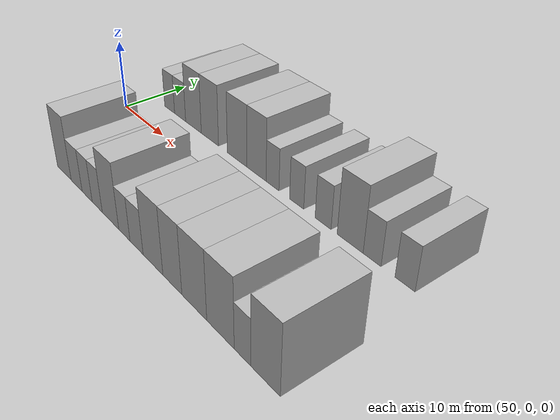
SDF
<sdf version="1.6">
 <world name="default">
  <model name="building_13">
   <static>1</static>
   <pose>54.5677 9.5000 0 0.000000 0.000000 1.570796</pose>
   <link name="link">
    <pose>0 0 3.00 0 0 0</pose>
    <collision name="collision"><geometry><box><size>10.0000 2.6450 6.0000</size></box></geometry></collision>
    <visual name="visual">
     <cast_shadows>0</cast_shadows>
     <geometry><box><size>10.0000 2.6450 6.0000</size></box></geometry>
     <material>
      <script>
       <uri>model://HANNAS_wall/materials/scripts</uri>
       <uri>model://HANNAS_wall/materials/textures</uri>
       <name>vrc/HANNAS_wall</name>
      </script>
     </material>
    </visual>
   </link>
  </model>
  <model name="building_14">
   <static>1</static>
   <pose>57.3248 9.5000 0 0.000000 0.000000 1.570796</pose>
   <link name="link">
    <pose>0 0 3.00 0 0 0</pose>
    <collision name="collision"><geometry><box><size>10.0000 2.8693 6.0000</size></box></geometry></collision>
    <visual name="visual">
     <cast_shadows>0</cast_shadows>
     <geometry><box><size>10.0000 2.8693 6.0000</size></box></geometry>
     <material>
      <script>
       <uri>model://HANNAS_wall/materials/scripts</uri>
       <uri>model://HANNAS_wall/materials/textures</uri>
       <name>vrc/HANNAS_wall</name>
      </script>
     </material>
    </visual>
   </link>
  </model>
  <model name="building_15">
   <static>1</static>
   <pose>60.7099 9.5000 0 0.000000 0.000000 1.570796</pose>
   <link name="link">
    <pose>0 0 4.50 0 0 0</pose>
    <collision name="collision"><geometry><box><size>10.0000 3.9008 9.0000</size></box></geometry></collision>
    <visual name="visual">
     <cast_shadows>0</cast_shadows>
     <geometry><box><size>10.0000 3.9008 9.0000</size></box></geometry>
     <material>
      <script>
       <uri>model://HANNAS_wall/materials/scripts</uri>
       <uri>model://HANNAS_wall/materials/textures</uri>
       <name>vrc/HANNAS_wall</name>
      </script>
     </material>
    </visual>
   </link>
  </model>
  <model name="building_16">
   <static>1</static>
   <pose>64.6893 9.5000 0 0.000000 0.000000 1.570796</pose>
   <link name="link">
    <pose>0 0 4.50 0 0 0</pose>
    <collision name="collision"><geometry><box><size>10.0000 4.0580 9.0000</size></box></geometry></collision>
    <visual name="visual">
     <cast_shadows>0</cast_shadows>
     <geometry><box><size>10.0000 4.0580 9.0000</size></box></geometry>
     <material>
      <script>
       <uri>model://HANNAS_wall/materials/scripts</uri>
       <uri>model://HANNAS_wall/materials/textures</uri>
       <name>vrc/HANNAS_wall</name>
      </script>
     </material>
    </visual>
   </link>
  </model>
  <model name="building_17">
   <static>1</static>
   <pose>70.8295 9.5000 0 0.000000 0.000000 1.570796</pose>
   <link name="link">
    <pose>0 0 4.50 0 0 0</pose>
    <collision name="collision"><geometry><box><size>10.0000 4.2225 9.0000</size></box></geometry></collision>
    <visual name="visual">
     <cast_shadows>0</cast_shadows>
     <geometry><box><size>10.0000 4.2225 9.0000</size></box></geometry>
     <material>
      <script>
       <uri>model://HANNAS_wall/materials/scripts</uri>
       <uri>model://HANNAS_wall/materials/textures</uri>
       <name>vrc/HANNAS_wall</name>
      </script>
     </material>
    </visual>
   </link>
  </model>
  <model name="building_18">
   <static>1</static>
   <pose>74.9079 9.5000 0 0.000000 0.000000 1.570796</pose>
   <link name="link">
    <pose>0 0 4.50 0 0 0</pose>
    <collision name="collision"><geometry><box><size>10.0000 3.9343 9.0000</size></box></geometry></collision>
    <visual name="visual">
     <cast_shadows>0</cast_shadows>
     <geometry><box><size>10.0000 3.9343 9.0000</size></box></geometry>
     <material>
      <script>
       <uri>model://HANNAS_wall/materials/scripts</uri>
       <uri>model://HANNAS_wall/materials/textures</uri>
       <name>vrc/HANNAS_wall</name>
      </script>
     </material>
    </visual>
   </link>
  </model>
  <model name="building_19">
   <static>1</static>
   <pose>78.1344 9.5000 0 0.000000 0.000000 1.570796</pose>
   <link name="link">
    <pose>0 0 3.00 0 0 0</pose>
    <collision name="collision"><geometry><box><size>10.0000 2.5186 6.0000</size></box></geometry></collision>
    <visual name="visual">
     <cast_shadows>0</cast_shadows>
     <geometry><box><size>10.0000 2.5186 6.0000</size></box></geometry>
     <material>
      <script>
       <uri>model://HANNAS_wall/materials/scripts</uri>
       <uri>model://HANNAS_wall/materials/textures</uri>
       <name>vrc/HANNAS_wall</name>
      </script>
     </material>
    </visual>
   </link>
  </model>
  <model name="building_20">
   <static>1</static>
   <pose>82.6851 9.5000 0 0.000000 0.000000 1.570796</pose>
   <link name="link">
    <pose>0 0 3.00 0 0 0</pose>
    <collision name="collision"><geometry><box><size>10.0000 2.5830 6.0000</size></box></geometry></collision>
    <visual name="visual">
     <cast_shadows>0</cast_shadows>
     <geometry><box><size>10.0000 2.5830 6.0000</size></box></geometry>
     <material>
      <script>
       <uri>model://HANNAS_wall/materials/scripts</uri>
       <uri>model://HANNAS_wall/materials/textures</uri>
       <name>vrc/HANNAS_wall</name>
      </script>
     </material>
    </visual>
   </link>
  </model>
  <model name="building_21">
   <static>1</static>
   <pose>87.3327 9.5000 0 0.000000 0.000000 1.570796</pose>
   <link name="link">
    <pose>0 0 3.00 0 0 0</pose>
    <collision name="collision"><geometry><box><size>10.0000 2.7122 6.0000</size></box></geometry></collision>
    <visual name="visual">
     <cast_shadows>0</cast_shadows>
     <geometry><box><size>10.0000 2.7122 6.0000</size></box></geometry>
     <material>
      <script>
       <uri>model://HANNAS_wall/materials/scripts</uri>
       <uri>model://HANNAS_wall/materials/textures</uri>
       <name>vrc/HANNAS_wall</name>
      </script>
     </material>
    </visual>
   </link>
  </model>
  <model name="building_22">
   <static>1</static>
   <pose>91.7432 9.5000 0 0.000000 0.000000 1.570796</pose>
   <link name="link">
    <pose>0 0 4.50 0 0 0</pose>
    <collision name="collision"><geometry><box><size>10.0000 4.1087 9.0000</size></box></geometry></collision>
    <visual name="visual">
     <cast_shadows>0</cast_shadows>
     <geometry><box><size>10.0000 4.1087 9.0000</size></box></geometry>
     <material>
      <script>
       <uri>model://HANNAS_wall/materials/scripts</uri>
       <uri>model://HANNAS_wall/materials/textures</uri>
       <name>vrc/HANNAS_wall</name>
      </script>
     </material>
    </visual>
   </link>
  </model>
  <model name="building_23">
   <static>1</static>
   <pose>95.1326 9.5000 0 0.000000 0.000000 1.570796</pose>
   <link name="link">
    <pose>0 0 3.00 0 0 0</pose>
    <collision name="collision"><geometry><box><size>10.0000 2.6700 6.0000</size></box></geometry></collision>
    <visual name="visual">
     <cast_shadows>0</cast_shadows>
     <geometry><box><size>10.0000 2.6700 6.0000</size></box></geometry>
     <material>
      <script>
       <uri>model://HANNAS_wall/materials/scripts</uri>
       <uri>model://HANNAS_wall/materials/textures</uri>
       <name>vrc/HANNAS_wall</name>
      </script>
     </material>
    </visual>
   </link>
  </model>
  <model name="building_24">
   <static>1</static>
   <pose>99.8553 9.5000 0 0.000000 0.000000 1.570796</pose>
   <link name="link">
    <pose>0 0 3.00 0 0 0</pose>
    <collision name="collision"><geometry><box><size>10.0000 2.7754 6.0000</size></box></geometry></collision>
    <visual name="visual">
     <cast_shadows>0</cast_shadows>
     <geometry><box><size>10.0000 2.7754 6.0000</size></box></geometry>
     <material>
      <script>
       <uri>model://HANNAS_wall/materials/scripts</uri>
       <uri>model://HANNAS_wall/materials/textures</uri>
       <name>vrc/HANNAS_wall</name>
      </script>
     </material>
    </visual>
   </link>
  </model>
  <model name="building_60">
   <static>1</static>
   <pose>60.1904 -9.5000 0 0.000000 0.000000 1.570796</pose>
   <link name="link">
    <pose>0 0 4.50 0 0 0</pose>
    <collision name="collision"><geometry><box><size>10.0000 3.9190 9.0000</size></box></geometry></collision>
    <visual name="visual">
     <cast_shadows>0</cast_shadows>
     <geometry><box><size>10.0000 3.9190 9.0000</size></box></geometry>
     <material>
      <script>
       <uri>model://HANNAS_wall/materials/scripts</uri>
       <uri>model://HANNAS_wall/materials/textures</uri>
       <name>vrc/HANNAS_wall</name>
      </script>
     </material>
    </visual>
   </link>
  </model>
  <model name="building_61">
   <static>1</static>
   <pose>63.6444 -9.5000 0 0.000000 0.000000 1.570796</pose>
   <link name="link">
    <pose>0 0 3.00 0 0 0</pose>
    <collision name="collision"><geometry><box><size>10.0000 2.9891 6.0000</size></box></geometry></collision>
    <visual name="visual">
     <cast_shadows>0</cast_shadows>
     <geometry><box><size>10.0000 2.9891 6.0000</size></box></geometry>
     <material>
      <script>
       <uri>model://HANNAS_wall/materials/scripts</uri>
       <uri>model://HANNAS_wall/materials/textures</uri>
       <name>vrc/HANNAS_wall</name>
      </script>
     </material>
    </visual>
   </link>
  </model>
  <model name="building_62">
   <static>1</static>
   <pose>66.4522 -9.5000 0 0.000000 0.000000 1.570796</pose>
   <link name="link">
    <pose>0 0 3.00 0 0 0</pose>
    <collision name="collision"><geometry><box><size>10.0000 2.6264 6.0000</size></box></geometry></collision>
    <visual name="visual">
     <cast_shadows>0</cast_shadows>
     <geometry><box><size>10.0000 2.6264 6.0000</size></box></geometry>
     <material>
      <script>
       <uri>model://HANNAS_wall/materials/scripts</uri>
       <uri>model://HANNAS_wall/materials/textures</uri>
       <name>vrc/HANNAS_wall</name>
      </script>
     </material>
    </visual>
   </link>
  </model>
  <model name="building_63">
   <static>1</static>
   <pose>69.0239 -9.5000 0 0.000000 0.000000 1.570796</pose>
   <link name="link">
    <pose>0 0 3.00 0 0 0</pose>
    <collision name="collision"><geometry><box><size>10.0000 2.5169 6.0000</size></box></geometry></collision>
    <visual name="visual">
     <cast_shadows>0</cast_shadows>
     <geometry><box><size>10.0000 2.5169 6.0000</size></box></geometry>
     <material>
      <script>
       <uri>model://HANNAS_wall/materials/scripts</uri>
       <uri>model://HANNAS_wall/materials/textures</uri>
       <name>vrc/HANNAS_wall</name>
      </script>
     </material>
    </visual>
   </link>
  </model>
  <model name="building_64">
   <static>1</static>
   <pose>72.2554 -9.5000 0 0.000000 0.000000 1.570796</pose>
   <link name="link">
    <pose>0 0 4.50 0 0 0</pose>
    <collision name="collision"><geometry><box><size>10.0000 3.9462 9.0000</size></box></geometry></collision>
    <visual name="visual">
     <cast_shadows>0</cast_shadows>
     <geometry><box><size>10.0000 3.9462 9.0000</size></box></geometry>
     <material>
      <script>
       <uri>model://HANNAS_wall/materials/scripts</uri>
       <uri>model://HANNAS_wall/materials/textures</uri>
       <name>vrc/HANNAS_wall</name>
      </script>
     </material>
    </visual>
   </link>
  </model>
  <model name="building_65">
   <static>1</static>
   <pose>75.4976 -9.5000 0 0.000000 0.000000 1.570796</pose>
   <link name="link">
    <pose>0 0 3.00 0 0 0</pose>
    <collision name="collision"><geometry><box><size>10.0000 2.5381 6.0000</size></box></geometry></collision>
    <visual name="visual">
     <cast_shadows>0</cast_shadows>
     <geometry><box><size>10.0000 2.5381 6.0000</size></box></geometry>
     <material>
      <script>
       <uri>model://HANNAS_wall/materials/scripts</uri>
       <uri>model://HANNAS_wall/materials/textures</uri>
       <name>vrc/HANNAS_wall</name>
      </script>
     </material>
    </visual>
   </link>
  </model>
  <model name="building_66">
   <static>1</static>
   <pose>78.1930 -9.5000 0 0.000000 0.000000 1.570796</pose>
   <link name="link">
    <pose>0 0 3.00 0 0 0</pose>
    <collision name="collision"><geometry><box><size>10.0000 2.8527 6.0000</size></box></geometry></collision>
    <visual name="visual">
     <cast_shadows>0</cast_shadows>
     <geometry><box><size>10.0000 2.8527 6.0000</size></box></geometry>
     <material>
      <script>
       <uri>model://HANNAS_wall/materials/scripts</uri>
       <uri>model://HANNAS_wall/materials/textures</uri>
       <name>vrc/HANNAS_wall</name>
      </script>
     </material>
    </visual>
   </link>
  </model>
  <model name="building_67">
   <static>1</static>
   <pose>81.6437 -9.5000 0 0.000000 0.000000 1.570796</pose>
   <link name="link">
    <pose>0 0 4.50 0 0 0</pose>
    <collision name="collision"><geometry><box><size>10.0000 4.0486 9.0000</size></box></geometry></collision>
    <visual name="visual">
     <cast_shadows>0</cast_shadows>
     <geometry><box><size>10.0000 4.0486 9.0000</size></box></geometry>
     <material>
      <script>
       <uri>model://HANNAS_wall/materials/scripts</uri>
       <uri>model://HANNAS_wall/materials/textures</uri>
       <name>vrc/HANNAS_wall</name>
      </script>
     </material>
    </visual>
   </link>
  </model>
  <model name="building_68">
   <static>1</static>
   <pose>85.4848 -9.5000 0 0.000000 0.000000 1.570796</pose>
   <link name="link">
    <pose>0 0 4.50 0 0 0</pose>
    <collision name="collision"><geometry><box><size>10.0000 3.6337 9.0000</size></box></geometry></collision>
    <visual name="visual">
     <cast_shadows>0</cast_shadows>
     <geometry><box><size>10.0000 3.6337 9.0000</size></box></geometry>
     <material>
      <script>
       <uri>model://HANNAS_wall/materials/scripts</uri>
       <uri>model://HANNAS_wall/materials/textures</uri>
       <name>vrc/HANNAS_wall</name>
      </script>
     </material>
    </visual>
   </link>
  </model>
  <model name="building_69">
   <static>1</static>
   <pose>89.5160 -9.5000 0 0.000000 0.000000 1.570796</pose>
   <link name="link">
    <pose>0 0 4.50 0 0 0</pose>
    <collision name="collision"><geometry><box><size>10.0000 4.4285 9.0000</size></box></geometry></collision>
    <visual name="visual">
     <cast_shadows>0</cast_shadows>
     <geometry><box><size>10.0000 4.4285 9.0000</size></box></geometry>
     <material>
      <script>
       <uri>model://HANNAS_wall/materials/scripts</uri>
       <uri>model://HANNAS_wall/materials/textures</uri>
       <name>vrc/HANNAS_wall</name>
      </script>
     </material>
    </visual>
   </link>
  </model>
  <model name="building_70">
   <static>1</static>
   <pose>93.9801 -9.5000 0 0.000000 0.000000 1.570796</pose>
   <link name="link">
    <pose>0 0 4.50 0 0 0</pose>
    <collision name="collision"><geometry><box><size>10.0000 4.4997 9.0000</size></box></geometry></collision>
    <visual name="visual">
     <cast_shadows>0</cast_shadows>
     <geometry><box><size>10.0000 4.4997 9.0000</size></box></geometry>
     <material>
      <script>
       <uri>model://HANNAS_wall/materials/scripts</uri>
       <uri>model://HANNAS_wall/materials/textures</uri>
       <name>vrc/HANNAS_wall</name>
      </script>
     </material>
    </visual>
   </link>
  </model>
  <model name="building_71">
   <static>1</static>
   <pose>97.5045 -9.5000 0 0.000000 0.000000 1.570796</pose>
   <link name="link">
    <pose>0 0 3.00 0 0 0</pose>
    <collision name="collision"><geometry><box><size>10.0000 2.5492 6.0000</size></box></geometry></collision>
    <visual name="visual">
     <cast_shadows>0</cast_shadows>
     <geometry><box><size>10.0000 2.5492 6.0000</size></box></geometry>
     <material>
      <script>
       <uri>model://HANNAS_wall/materials/scripts</uri>
       <uri>model://HANNAS_wall/materials/textures</uri>
       <name>vrc/HANNAS_wall</name>
      </script>
     </material>
    </visual>
   </link>
  </model>
  <model name="building_72">
   <static>1</static>
   <pose>100.8826 -9.5000 0 0.000000 0.000000 1.570796</pose>
   <link name="link">
    <pose>0 0 4.50 0 0 0</pose>
    <collision name="collision"><geometry><box><size>10.0000 4.2069 9.0000</size></box></geometry></collision>
    <visual name="visual">
     <cast_shadows>0</cast_shadows>
     <geometry><box><size>10.0000 4.2069 9.0000</size></box></geometry>
     <material>
      <script>
       <uri>model://HANNAS_wall/materials/scripts</uri>
       <uri>model://HANNAS_wall/materials/textures</uri>
       <name>vrc/HANNAS_wall</name>
      </script>
     </material>
    </visual>
   </link>
  </model>
 </world>
</sdf>
